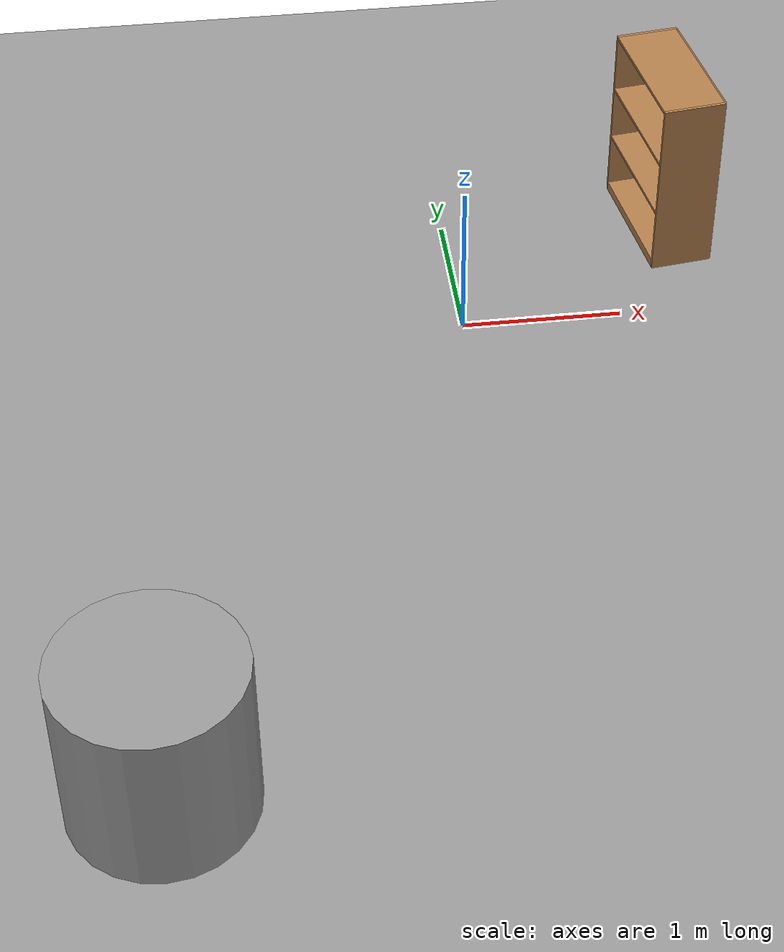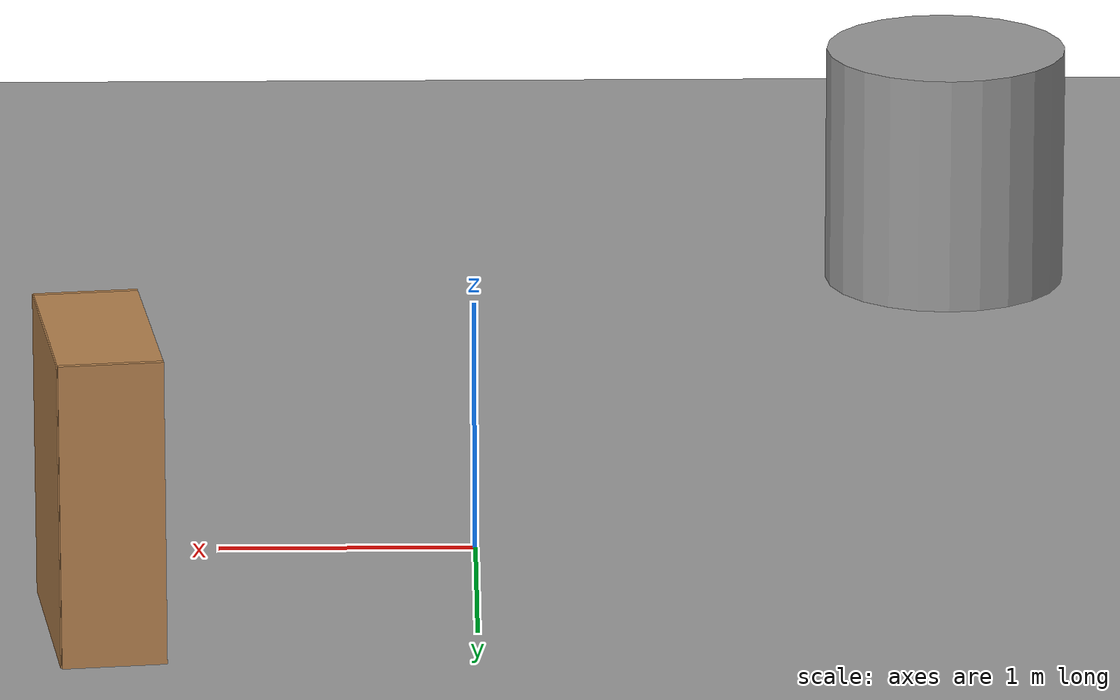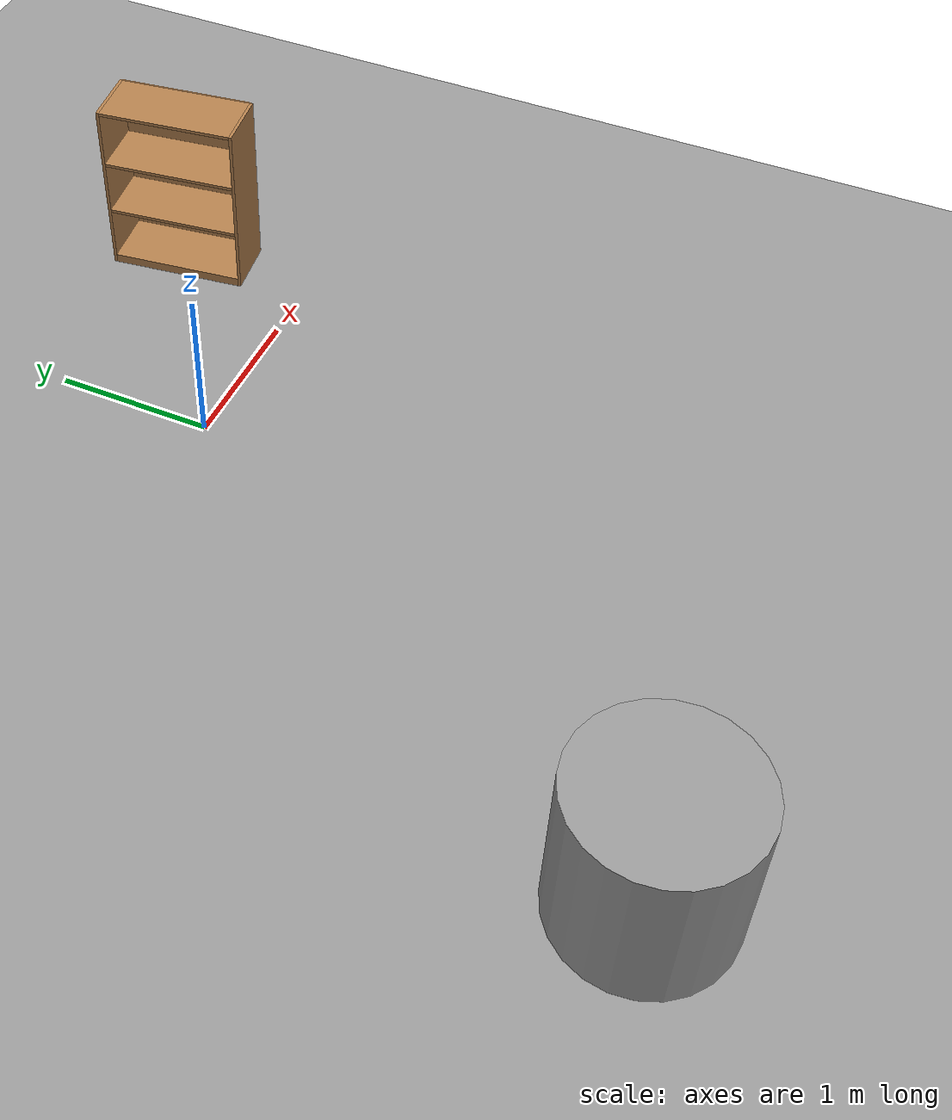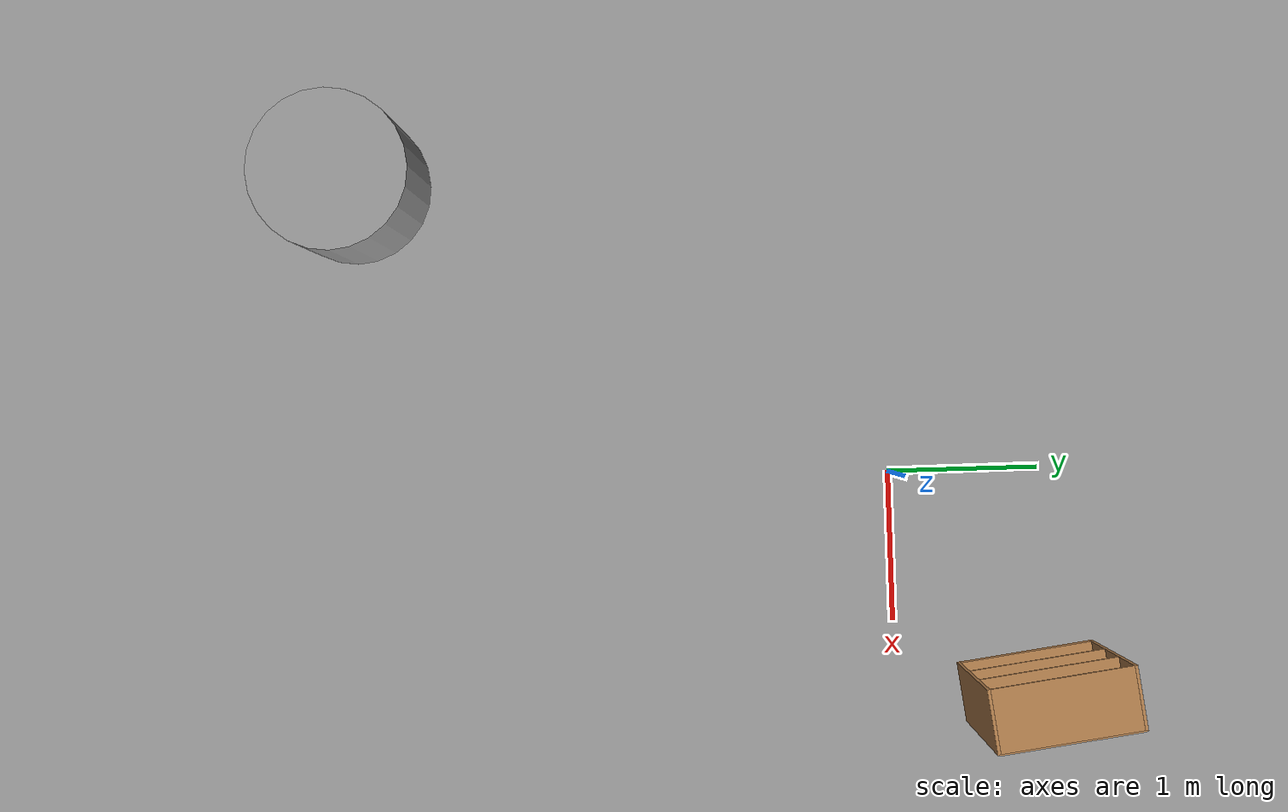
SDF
<sdf version="1.4">
 <world name="default">
  <light name="sun" type="directional">
   <pose>0 0 10 0 -0 0</pose>
   <diffuse>0.8 0.8 0.8 1</diffuse>
   <specular>0.2 0.2 0.2 1</specular>
   <attenuation>
    <range>1000</range>
    <constant>0.9</constant>
    <linear>0.01</linear>
    <quadratic>0.001</quadratic>
   </attenuation>
   <direction>0.5 0.1 -0.9</direction>
  </light>
  <scene><ambient>0.4 0.4 0.4 1</ambient><background>0.7 0.7 0.7 1</background><shadows>1</shadows></scene>
  <physics type="ode">
   <real_time_update_rate>1000.0</real_time_update_rate>
   <max_step_size>0.001</max_step_size>
   <real_time_factor>1</real_time_factor>
   <ode>
    <solver>
     <type>quick</type>
     <iters>150</iters>
     <precon_iters>0</precon_iters>
     <sor>1.400000</sor>
     <use_dynamic_moi_rescaling>1</use_dynamic_moi_rescaling>
    </solver>
    <constraints>
     <cfm>0.00001</cfm>
     <erp>0.2</erp>
     <contact_max_correcting_vel>2000.000000</contact_max_correcting_vel>
     <contact_surface_layer>0.01000</contact_surface_layer>
    </constraints>
   </ode>
  </physics>
  <physics type="ode">
   <max_step_size>0.001</max_step_size>
   <real_time_factor>1</real_time_factor>
   <real_time_update_rate>1000.0</real_time_update_rate>
   <gravity>0 0 -9.8</gravity>
  </physics>
  <model name="bookshelf">
   <static>1</static>
   <link name="link">
    <inertial><mass>1</mass></inertial>
    <collision name="back">
     <pose>0 0.005 0.6 0 -0 0</pose>
     <geometry><box><size>0.9 0.01 1.2</size></box></geometry>
    </collision>
    <visual name="visual1">
     <pose>0 0.005 0.6 0 -0 0</pose>
     <geometry><box><size>0.9 0.01 1.2</size></box></geometry>
     <material>
      <script><uri>file://media/materials/scripts/gazebo.material</uri><name>Gazebo/Wood</name></script>
     </material>
    </visual>
    <collision name="left_side">
     <pose>0.45 -0.195 0.6 0 -0 0</pose>
     <geometry><box><size>0.02 0.4 1.2</size></box></geometry>
    </collision>
    <visual name="visual2">
     <pose>0.45 -0.195 0.6 0 -0 0</pose>
     <geometry><box><size>0.02 0.4 1.2</size></box></geometry>
     <material>
      <script><uri>file://media/materials/scripts/gazebo.material</uri><name>Gazebo/Wood</name></script>
     </material>
    </visual>
    <collision name="right_side">
     <pose>-0.45 -0.195 0.6 0 -0 0</pose>
     <geometry><box><size>0.02 0.4 1.2</size></box></geometry>
    </collision>
    <visual name="visual3">
     <pose>-0.45 -0.195 0.6 0 -0 0</pose>
     <geometry><box><size>0.02 0.4 1.2</size></box></geometry>
     <material>
      <script><uri>file://media/materials/scripts/gazebo.material</uri><name>Gazebo/Wood</name></script>
     </material>
    </visual>
    <collision name="bottom">
     <pose>0 -0.195 0.03 0 -0 0</pose>
     <geometry><box><size>0.88 0.4 0.06</size></box></geometry>
    </collision>
    <visual name="visual4">
     <pose>0 -0.195 0.03 0 -0 0</pose>
     <geometry><box><size>0.88 0.4 0.06</size></box></geometry>
     <material>
      <script><uri>file://media/materials/scripts/gazebo.material</uri><name>Gazebo/Wood</name></script>
     </material>
    </visual>
    <collision name="top">
     <pose>0 -0.195 1.19 0 -0 0</pose>
     <geometry><box><size>0.88 0.4 0.02</size></box></geometry>
    </collision>
    <visual name="visual5">
     <pose>0 -0.195 1.19 0 -0 0</pose>
     <geometry><box><size>0.88 0.4 0.02</size></box></geometry>
     <material>
      <script><uri>file://media/materials/scripts/gazebo.material</uri><name>Gazebo/Wood</name></script>
     </material>
    </visual>
    <collision name="low_shelf">
     <pose>0 -0.195 0.43 0 -0 0</pose>
     <geometry><box><size>0.88 0.4 0.02</size></box></geometry>
    </collision>
    <visual name="visual6">
     <pose>0 -0.195 0.43 0 -0 0</pose>
     <geometry><box><size>0.88 0.4 0.02</size></box></geometry>
     <material>
      <script><uri>file://media/materials/scripts/gazebo.material</uri><name>Gazebo/Wood</name></script>
     </material>
    </visual>
    <collision name="high_shelf">
     <pose>0 -0.195 0.8 0 -0 0</pose>
     <geometry><box><size>0.88 0.4 0.02</size></box></geometry>
    </collision>
    <visual name="visual7">
     <pose>0 -0.195 0.8 0 -0 0</pose>
     <geometry><box><size>0.88 0.4 0.02</size></box></geometry>
     <material>
      <script><uri>file://media/materials/scripts/gazebo.material</uri><name>Gazebo/Wood</name></script>
     </material>
    </visual>
    <velocity_decay><linear>0</linear><angular>0</angular></velocity_decay>
   </link>
   <pose>1.62636 0.931221 0 0 0 -1.44</pose>
  </model>
  <model name="ground_plane_0">
   <static>1</static>
   <link name="link">
    <collision name="collision">
     <geometry><plane><normal>0 0 1</normal><size>100 100</size></plane></geometry>
     <surface><friction><ode><mu>100</mu><mu2>50</mu2></ode></friction></surface>
    </collision>
    <visual name="visual">
     <cast_shadows>0</cast_shadows>
     <geometry><plane><normal>0 0 1</normal><size>100 100</size></plane></geometry>
     <material>
      <script><uri>file://media/materials/scripts/gazebo.material</uri><name>Gazebo/Grey</name></script>
     </material>
    </visual>
    <velocity_decay><linear>0</linear><angular>0</angular></velocity_decay>
   </link>
   <pose>0.497681 0 0 0 -0 0</pose>
  </model>
  <model name="unit_cylinder_1">
   <pose>-2 -3.4888 0.5 0 -0 0</pose>
   <link name="link">
    <inertial>
     <mass>1</mass>
     <inertia><ixx>1</ixx><ixy>0</ixy><ixz>0</ixz><iyy>1</iyy><iyz>0</iyz><izz>1</izz></inertia>
    </inertial>
    <collision name="collision">
     <geometry><cylinder><radius>0.5</radius><length>1</length></cylinder></geometry>
    </collision>
    <visual name="visual">
     <geometry><cylinder><radius>0.5</radius><length>1</length></cylinder></geometry>
     <material>
      <script><uri>file://media/materials/scripts/gazebo.material</uri><name>Gazebo/Grey</name></script>
     </material>
    </visual>
    <velocity_decay><linear>0</linear><angular>0</angular></velocity_decay>
   </link>
   <static>0</static>
  </model>
 </world>
</sdf>
